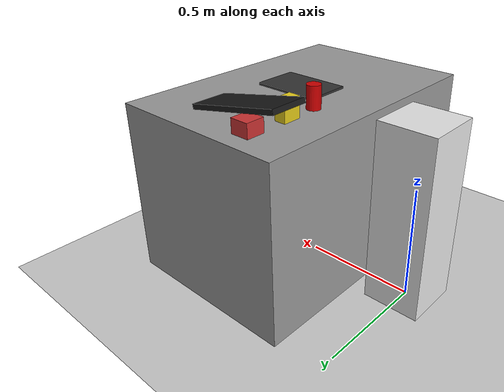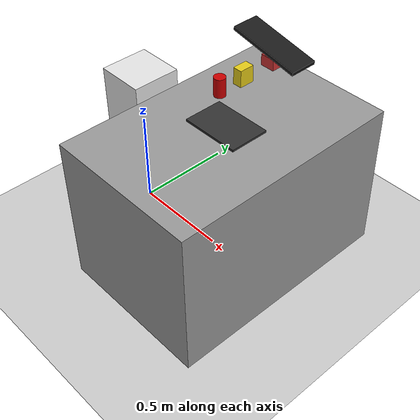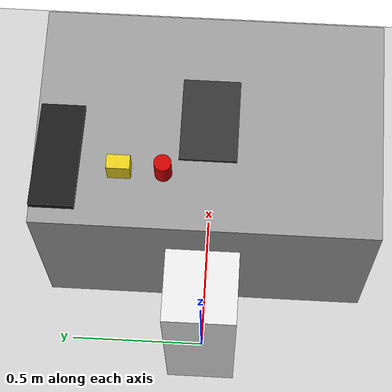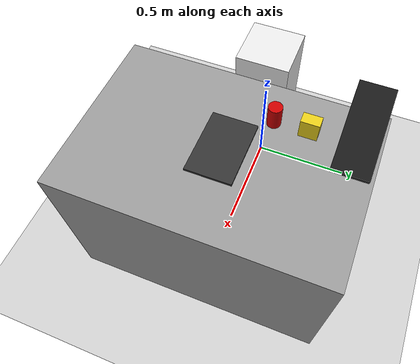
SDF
<?xml version="1.0" ?>
<sdf version="1.6">
  <world name="hamburger_station_realistic">

    <include>
      <uri>model://sun</uri>
    </include>
    <include>
      <uri>model://ground_plane</uri>
    </include>

    <model name="robot_pedestal">
      <static>true</static>
      <pose>0 0 0.4 0 0 0</pose> <link name="link">
        <collision name="collision">
          <geometry>
            <box>
              <size>0.25 0.25 0.8</size>
            </box>
          </geometry>
        </collision>
        <visual name="visual">
          <geometry>
            <box>
              <size>0.25 0.25 0.8</size>
            </box>
          </geometry>
          <material>
            <ambient>0.9 0.9 0.9 1</ambient>
            <diffuse>0.9 0.9 0.9 1</diffuse> </material>
        </visual>
      </link>
    </model>

    <model name="work_table">
      <static>true</static>
      <pose>0.6 0 0.39 0 0 0</pose> <link name="link">
        <collision name="collision">
          <geometry>
            <box>
              <size>0.8 1.2 0.78</size>
            </box>
          </geometry>
        </collision>
        <visual name="visual">
          <geometry>
            <box>
              <size>0.8 1.2 0.78</size>
            </box>
          </geometry>
          <material>
            <script>
              <uri>file://media/materials/scripts/gazebo.material</uri>
              <name>Gazebo/Grey</name>
            </script>
          </material>
        </visual>
      </link>
    </model>

    <model name="burger_slide">
      <static>true</static>
      <pose>0.4 0.5 0.9 0 0.2 0</pose>
      <link name="link">
        <visual name="visual">
          <geometry>
            <box>
              <size>0.4 0.15 0.02</size>
            </box>
          </geometry>
          <material>
            <ambient>0.1 0.1 0.1 1</ambient>
            <diffuse>0.1 0.1 0.1 1</diffuse>
          </material>
        </visual>
      </link>
    </model>

    <model name="burger1">
      <pose>0.4 0.5 0.82 0 0 0</pose> <link name="link">
        <inertial>
          <mass>0.2</mass>
          <inertia>
            <ixx>0.0001</ixx><ixy>0</ixy><ixz>0</ixz>
            <iyy>0.0001</iyy><iyz>0</iyz>
            <izz>0.0001</izz>
          </inertia>
        </inertial>
        <collision name="collision">
          <geometry>
            <box>
              <size>0.08 0.08 0.06</size> </box>
          </geometry>
          <surface>
            <friction>
              <ode>
                <mu>1.0</mu> <mu2>1.0</mu2> </ode>
            </friction>
          </surface>
        </collision>
        <visual name="visual">
          <geometry>
            <box>
              <size>0.08 0.08 0.06</size>
            </box>
          </geometry>
          <material>
            <ambient>0.8 0.2 0.2 1</ambient>
            <diffuse>0.8 0.2 0.2 1</diffuse> </material>
        </visual>
      </link>
    </model>

    <model name="fries">
      <pose>0.4 0.3 0.82 0 0 0</pose>
      <link name="link">
        <inertial>
          <mass>0.1</mass>
          <inertia>
            <ixx>0.0001</ixx><ixy>0</ixy><ixz>0</ixz>
            <iyy>0.0001</iyy><iyz>0</iyz>
            <izz>0.0001</izz>
          </inertia>
        </inertial>
        <collision name="collision">
          <geometry>
            <box>
              <size>0.05 0.08 0.1</size>
            </box>
          </geometry>
          <surface>
            <friction>
              <ode><mu>100.0</mu><mu2>100.0</mu2></ode>
            </friction>
          </surface>
        </collision>
        <visual name="visual">
          <geometry>
            <box>
              <size>0.05 0.08 0.1</size>
            </box>
          </geometry>
          <material>
            <ambient>0.9 0.8 0.1 1</ambient>
            <diffuse>0.9 0.8 0.1 1</diffuse> </material>
        </visual>
      </link>
    </model>

    <model name="coke">
      <pose>0.4 0.15 0.82 0 0 0</pose>
      <link name="link">
        <inertial>
          <mass>0.3</mass>
          <inertia>
            <ixx>0.0001</ixx><ixy>0</ixy><ixz>0</ixz>
            <iyy>0.0001</iyy><iyz>0</iyz>
            <izz>0.0001</izz>
          </inertia>
        </inertial>
        <collision name="collision">
          <geometry>
            <cylinder>
              <radius>0.03</radius>
              <length>0.12</length>
            </cylinder>
          </geometry>
          <surface>
            <friction>
              <ode><mu>100.0</mu><mu2>100.0</mu2></ode>
            </friction>
          </surface>
        </collision>
        <visual name="visual">
          <geometry>
            <cylinder>
              <radius>0.03</radius>
              <length>0.12</length>
            </cylinder>
          </geometry>
          <material>
            <ambient>0.8 0 0 1</ambient>
            <diffuse>0.8 0 0 1</diffuse>
          </material>
        </visual>
      </link>
    </model>

    <model name="serving_tray">
      <static>false</static> <pose>0.6 0 0.79 0 0 0</pose> <link name="link">
        <inertial>
          <mass>0.5</mass>
          <inertia>
            <ixx>0.01</ixx><ixy>0</ixy><ixz>0</ixz>
            <iyy>0.01</iyy><iyz>0</iyz>
            <izz>0.01</izz>
          </inertia>
        </inertial>
        <collision name="collision">
          <geometry>
            <box>
              <size>0.3 0.2 0.01</size> </box>
          </geometry>
          <surface>
            <friction>
              <ode><mu>1.0</mu><mu2>1.0</mu2></ode>
            </friction>
          </surface>
        </collision>
        <visual name="visual">
          <geometry>
            <box>
              <size>0.3 0.2 0.01</size>
            </box>
          </geometry>
          <material>
            <ambient>0.2 0.2 0.2 1</ambient>
            <diffuse>0.2 0.2 0.2 1</diffuse> </material>
        </visual>
      </link>
    </model>

    <light name="user_spot_light" type="spot">
      <pose>0 0 3 0 0 0</pose>
      <diffuse>0.8 0.8 0.8 1</diffuse>
      <specular>0.1 0.1 0.1 1</specular>
      <direction>0 0 -1</direction>
      <attenuation>
        <range>20</range>
        <constant>0.5</constant>
        <linear>0.01</linear>
        <quadratic>0.001</quadratic>
      </attenuation>
      <spot>
        <inner_angle>0.6</inner_angle>
        <outer_angle>1.0</outer_angle>
        <falloff>1.0</falloff>
      </spot>
    </light>

  </world>
</sdf>
